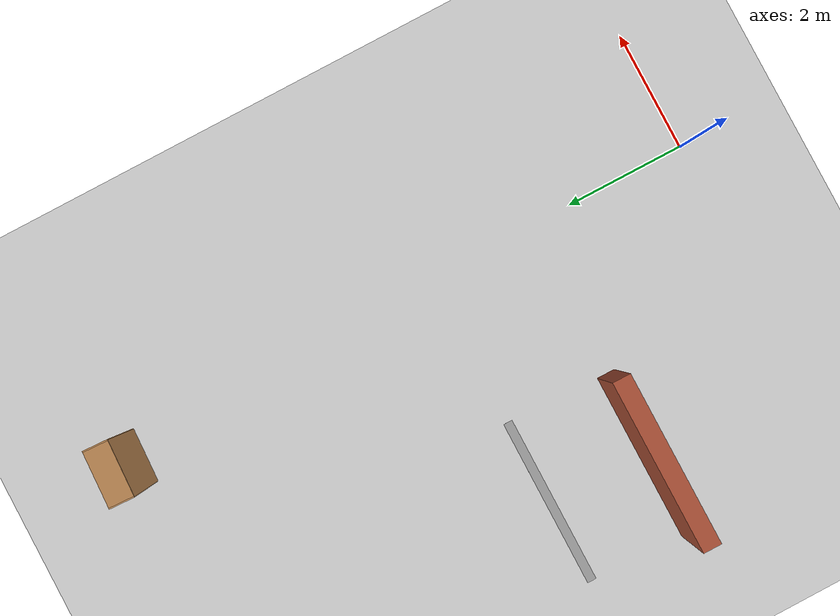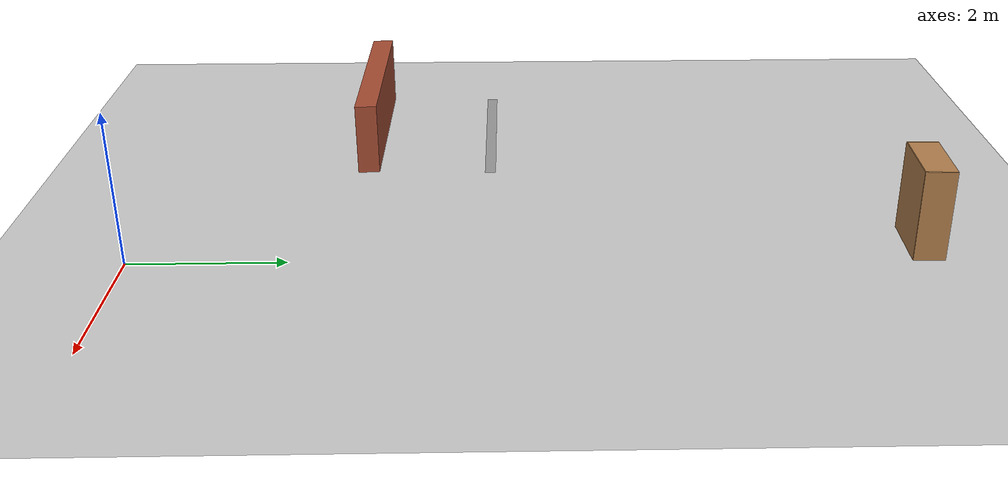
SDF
<sdf version="1.6">
 <world name="default">
  <model name="ground_plane">
   <static>1</static>
   <link name="link">
    <collision name="collision">
     <geometry><plane><normal>0 0 1</normal><size>30 30</size></plane></geometry>
     <surface><friction><ode><mu>100</mu><mu2>50</mu2></ode></friction></surface>
    </collision>
    <visual name="visual">
     <cast_shadows>0</cast_shadows>
     <geometry><plane><normal>0 0 1</normal><size>30 30</size></plane></geometry>
     <material>
      <script><uri>file://media/materials/scripts/gazebo.material</uri><name>Gazebo/Grey</name></script>
     </material>
    </visual>
   </link>
  </model>
  <model name="bookshelf">
   <static>1</static>
   <link name="link">
    <inertial><mass>1</mass></inertial>
    <collision name="back">
     <pose>0 0.005 0.6 0 -0 0</pose>
     <geometry><box><size>0.9 0.01 1.2</size></box></geometry>
    </collision>
    <visual name="visual1">
     <pose>0 0.005 0.6 0 -0 0</pose>
     <geometry><box><size>0.9 0.01 1.2</size></box></geometry>
     <material>
      <script><uri>file://media/materials/scripts/gazebo.material</uri><name>Gazebo/Wood</name></script>
     </material>
    </visual>
    <collision name="left_side">
     <pose>0.45 -0.195 0.6 0 -0 0</pose>
     <geometry><box><size>0.02 0.4 1.2</size></box></geometry>
    </collision>
    <visual name="visual2">
     <pose>0.45 -0.195 0.6 0 -0 0</pose>
     <geometry><box><size>0.02 0.4 1.2</size></box></geometry>
     <material>
      <script><uri>file://media/materials/scripts/gazebo.material</uri><name>Gazebo/Wood</name></script>
     </material>
    </visual>
    <collision name="right_side">
     <pose>-0.45 -0.195 0.6 0 -0 0</pose>
     <geometry><box><size>0.02 0.4 1.2</size></box></geometry>
    </collision>
    <visual name="visual3">
     <pose>-0.45 -0.195 0.6 0 -0 0</pose>
     <geometry><box><size>0.02 0.4 1.2</size></box></geometry>
     <material>
      <script><uri>file://media/materials/scripts/gazebo.material</uri><name>Gazebo/Wood</name></script>
     </material>
    </visual>
    <collision name="bottom">
     <pose>0 -0.195 0.03 0 -0 0</pose>
     <geometry><box><size>0.88 0.4 0.06</size></box></geometry>
    </collision>
    <visual name="visual4">
     <pose>0 -0.195 0.03 0 -0 0</pose>
     <geometry><box><size>0.88 0.4 0.06</size></box></geometry>
     <material>
      <script><uri>file://media/materials/scripts/gazebo.material</uri><name>Gazebo/Wood</name></script>
     </material>
    </visual>
    <collision name="top">
     <pose>0 -0.195 1.19 0 -0 0</pose>
     <geometry><box><size>0.88 0.4 0.02</size></box></geometry>
    </collision>
    <visual name="visual5">
     <pose>0 -0.195 1.19 0 -0 0</pose>
     <geometry><box><size>0.88 0.4 0.02</size></box></geometry>
     <material>
      <script><uri>file://media/materials/scripts/gazebo.material</uri><name>Gazebo/Wood</name></script>
     </material>
    </visual>
    <collision name="low_shelf">
     <pose>0 -0.195 0.43 0 -0 0</pose>
     <geometry><box><size>0.88 0.4 0.02</size></box></geometry>
    </collision>
    <visual name="visual6">
     <pose>0 -0.195 0.43 0 -0 0</pose>
     <geometry><box><size>0.88 0.4 0.02</size></box></geometry>
     <material>
      <script><uri>file://media/materials/scripts/gazebo.material</uri><name>Gazebo/Wood</name></script>
     </material>
    </visual>
    <collision name="high_shelf">
     <pose>0 -0.195 0.8 0 -0 0</pose>
     <geometry><box><size>0.88 0.4 0.02</size></box></geometry>
    </collision>
    <visual name="visual7">
     <pose>0 -0.195 0.8 0 -0 0</pose>
     <geometry><box><size>0.88 0.4 0.02</size></box></geometry>
     <material>
      <script><uri>file://media/materials/scripts/gazebo.material</uri><name>Gazebo/Wood</name></script>
     </material>
    </visual>
   </link>
   <pose>-0.340974 9.73401 0 0 -0 3.10087</pose>
  </model>
  <model name="Untitled">
   <pose>-3.95995 4.45939 0 0 -0 0</pose>
   <link name="Wall_1">
    <collision name="Wall_1_Collision">
     <geometry><box><size>2.8 0.15 0.001</size></box></geometry>
     <pose>0 0 0.0005 0 -0 0</pose>
    </collision>
    <visual name="Wall_1_Visual">
     <pose>0 0 0.0005 0 -0 0</pose>
     <geometry><box><size>2.8 0.15 0.001</size></box></geometry>
     <material>
      <script><uri>file://media/materials/scripts/gazebo.material</uri><name>Gazebo/Grey</name></script>
      <ambient>1 1 1 1</ambient>
     </material>
    </visual>
    <pose>0 0 0 0 -0 3.14159</pose>
   </link>
   <static>1</static>
  </model>
  <model name="parede">
   <pose>-4.01065 2.738 0 0 -0 0</pose>
   <link name="Wall_2">
    <collision name="Wall_2_Collision">
     <geometry><box><size>2.8 0.3 1</size></box></geometry>
     <pose>0 0 0.5 0 -0 0</pose>
    </collision>
    <visual name="Wall_2_Visual">
     <pose>0 0 0.5 0 -0 0</pose>
     <geometry><box><size>2.8 0.3 1</size></box></geometry>
     <material>
      <script><uri>file://media/materials/scripts/gazebo.material</uri><name>Gazebo/Bricks</name></script>
      <ambient>1 1 1 1</ambient>
     </material>
    </visual>
    <pose>0 0 0 0 -0 3.14159</pose>
   </link>
   <static>1</static>
  </model>
 </world>
</sdf>
